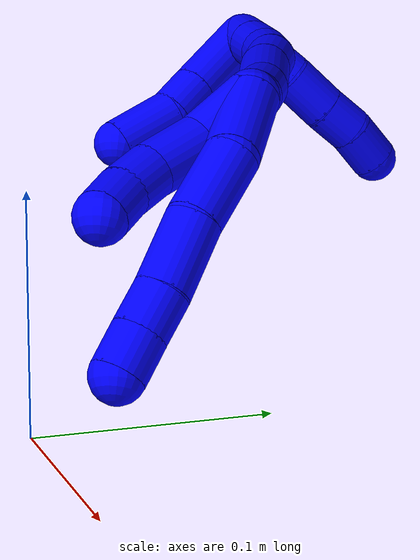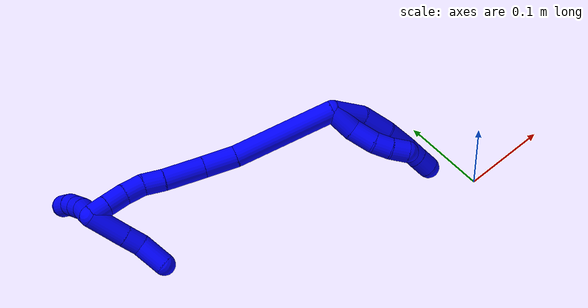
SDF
<sdf version="1.7">
 <world name="default">
  <model name="1">
   <static>0</static>
   <link name="1">
    <collision name="collision-cylinder-e_1_2_8">
     <pose>0.006859 -0.005844 -0.017224 2.81451 0.360626 1.6702</pose>
     <geometry><cylinder><radius>0.0125</radius><length>0.038877</length></cylinder></geometry>
     <surface>
      <friction><ode><mu>1.16</mu><mu2>1.16</mu2><slip1>0</slip1><slip2>0</slip2></ode></friction>
      <contact><ode><kp>1e+06</kp><kd>1</kd><max_vel>0</max_vel><min_depth>0.001</min_depth></ode></contact>
     </surface>
    </collision>
    <visual name="visual-cylinder-e_1_2_8">
     <pose>0.006859 -0.005844 -0.017224 2.81451 0.360626 1.6702</pose>
     <geometry><cylinder><radius>0.0125</radius><length>0.038877</length></cylinder></geometry>
     <material><ambient>0 0 1 1</ambient></material>
    </visual>
    <collision name="collision-cylinder-e_2_8_9">
     <pose>0.014441 -0.019079 -0.050878 2.71881 0.040101 0.18635</pose>
     <geometry><cylinder><radius>0.0125</radius><length>0.036063</length></cylinder></geometry>
     <surface>
      <friction><ode><mu>1.16</mu><mu2>1.16</mu2><slip1>0</slip1><slip2>0</slip2></ode></friction>
      <contact><ode><kp>1e+06</kp><kd>1</kd><max_vel>0</max_vel><min_depth>0.001</min_depth></ode></contact>
     </surface>
    </collision>
    <visual name="visual-cylinder-e_2_8_9">
     <pose>0.014441 -0.019079 -0.050878 2.71881 0.040101 0.18635</pose>
     <geometry><cylinder><radius>0.0125</radius><length>0.036063</length></cylinder></geometry>
     <material><ambient>0 0 1 1</ambient></material>
    </visual>
    <collision name="collision-cylinder-e_3_9_10">
     <pose>0.014152 -0.031517 -0.083776 2.8443 -0.058655 -0.386902</pose>
     <geometry><cylinder><radius>0.0125</radius><length>0.034507</length></cylinder></geometry>
     <surface>
      <friction><ode><mu>1.16</mu><mu2>1.16</mu2><slip1>0</slip1><slip2>0</slip2></ode></friction>
      <contact><ode><kp>1e+06</kp><kd>1</kd><max_vel>0</max_vel><min_depth>0.001</min_depth></ode></contact>
     </surface>
    </collision>
    <visual name="visual-cylinder-e_3_9_10">
     <pose>0.014152 -0.031517 -0.083776 2.8443 -0.058655 -0.386902</pose>
     <geometry><cylinder><radius>0.0125</radius><length>0.034507</length></cylinder></geometry>
     <material><ambient>0 0 1 1</ambient></material>
    </visual>
    <collision name="collision-cylinder-e_4_10_11">
     <pose>0.011957 -0.040193 -0.10978 2.77781 -0.115483 -0.609034</pose>
     <geometry><cylinder><radius>0.0125</radius><length>0.020542</length></cylinder></geometry>
     <surface>
      <friction><ode><mu>1.16</mu><mu2>1.16</mu2><slip1>0</slip1><slip2>0</slip2></ode></friction>
      <contact><ode><kp>1e+06</kp><kd>1</kd><max_vel>0</max_vel><min_depth>0.001</min_depth></ode></contact>
     </surface>
    </collision>
    <visual name="visual-cylinder-e_4_10_11">
     <pose>0.011957 -0.040193 -0.10978 2.77781 -0.115483 -0.609034</pose>
     <geometry><cylinder><radius>0.0125</radius><length>0.020542</length></cylinder></geometry>
     <material><ambient>0 0 1 1</ambient></material>
    </visual>
    <collision name="collision-cylinder-e_5_11_6">
     <pose>0.009792 -0.047221 -0.128674 2.79332 -0.098311 -0.545357</pose>
     <geometry><cylinder><radius>0.0125</radius><length>0.020012</length></cylinder></geometry>
     <surface>
      <friction><ode><mu>1.16</mu><mu2>1.16</mu2><slip1>0</slip1><slip2>0</slip2></ode></friction>
      <contact><ode><kp>1e+06</kp><kd>1</kd><max_vel>0</max_vel><min_depth>0.001</min_depth></ode></contact>
     </surface>
    </collision>
    <visual name="visual-cylinder-e_5_11_6">
     <pose>0.009792 -0.047221 -0.128674 2.79332 -0.098311 -0.545357</pose>
     <geometry><cylinder><radius>0.0125</radius><length>0.020012</length></cylinder></geometry>
     <material><ambient>0 0 1 1</ambient></material>
    </visual>
    <collision name="collision-cylinder-e_1_2_12">
     <pose>-0.002365 -0.009845 -0.011833 2.44762 -0.152476 -0.416347</pose>
     <geometry><cylinder><radius>0.0125</radius><length>0.031147</length></cylinder></geometry>
     <surface>
      <friction><ode><mu>1.16</mu><mu2>1.16</mu2><slip1>0</slip1><slip2>0</slip2></ode></friction>
      <contact><ode><kp>1e+06</kp><kd>1</kd><max_vel>0</max_vel><min_depth>0.001</min_depth></ode></contact>
     </surface>
    </collision>
    <visual name="visual-cylinder-e_1_2_12">
     <pose>-0.002365 -0.009845 -0.011833 2.44762 -0.152476 -0.416347</pose>
     <geometry><cylinder><radius>0.0125</radius><length>0.031147</length></cylinder></geometry>
     <material><ambient>0 0 1 1</ambient></material>
    </visual>
    <collision name="collision-cylinder-e_2_12_13">
     <pose>-0.004035 -0.0304 -0.033031 2.28935 0.048846 0.107524</pose>
     <geometry><cylinder><radius>0.0125</radius><length>0.028489</length></cylinder></geometry>
     <surface>
      <friction><ode><mu>1.16</mu><mu2>1.16</mu2><slip1>0</slip1><slip2>0</slip2></ode></friction>
      <contact><ode><kp>1e+06</kp><kd>1</kd><max_vel>0</max_vel><min_depth>0.001</min_depth></ode></contact>
     </surface>
    </collision>
    <visual name="visual-cylinder-e_2_12_13">
     <pose>-0.004035 -0.0304 -0.033031 2.28935 0.048846 0.107524</pose>
     <geometry><cylinder><radius>0.0125</radius><length>0.028489</length></cylinder></geometry>
     <material><ambient>0 0 1 1</ambient></material>
    </visual>
    <collision name="collision-cylinder-e_3_13_14">
     <pose>-0.000859 -0.047622 -0.049666 2.41109 0.248924 0.632371</pose>
     <geometry><cylinder><radius>0.0125</radius><length>0.020139</length></cylinder></geometry>
     <surface>
      <friction><ode><mu>1.16</mu><mu2>1.16</mu2><slip1>0</slip1><slip2>0</slip2></ode></friction>
      <contact><ode><kp>1e+06</kp><kd>1</kd><max_vel>0</max_vel><min_depth>0.001</min_depth></ode></contact>
     </surface>
    </collision>
    <visual name="visual-cylinder-e_3_13_14">
     <pose>-0.000859 -0.047622 -0.049666 2.41109 0.248924 0.632371</pose>
     <geometry><cylinder><radius>0.0125</radius><length>0.020139</length></cylinder></geometry>
     <material><ambient>0 0 1 1</ambient></material>
    </visual>
    <collision name="collision-cylinder-e_4_14_5">
     <pose>0.005477 -0.059534 -0.064566 2.5257 0.391119 1.11404</pose>
     <geometry><cylinder><radius>0.0125</radius><length>0.020225</length></cylinder></geometry>
     <surface>
      <friction><ode><mu>1.16</mu><mu2>1.16</mu2><slip1>0</slip1><slip2>0</slip2></ode></friction>
      <contact><ode><kp>1e+06</kp><kd>1</kd><max_vel>0</max_vel><min_depth>0.001</min_depth></ode></contact>
     </surface>
    </collision>
    <visual name="visual-cylinder-e_4_14_5">
     <pose>0.005477 -0.059534 -0.064566 2.5257 0.391119 1.11404</pose>
     <geometry><cylinder><radius>0.0125</radius><length>0.020225</length></cylinder></geometry>
     <material><ambient>0 0 1 1</ambient></material>
    </visual>
    <collision name="collision-cylinder-e_1_2_15">
     <pose>-0.051343 0.020906 0.023048 -0.736695 -1.02594 0.428135</pose>
     <geometry><cylinder><radius>0.0125</radius><length>0.120073</length></cylinder></geometry>
     <surface>
      <friction><ode><mu>1.16</mu><mu2>1.16</mu2><slip1>0</slip1><slip2>0</slip2></ode></friction>
      <contact><ode><kp>1e+06</kp><kd>1</kd><max_vel>0</max_vel><min_depth>0.001</min_depth></ode></contact>
     </surface>
    </collision>
    <visual name="visual-cylinder-e_1_2_15">
     <pose>-0.051343 0.020906 0.023048 -0.736695 -1.02594 0.428135</pose>
     <geometry><cylinder><radius>0.0125</radius><length>0.120073</length></cylinder></geometry>
     <material><ambient>0 0 1 1</ambient></material>
    </visual>
    <collision name="collision-cylinder-e_2_15_16">
     <pose>-0.117729 0.049066 0.055466 -0.65888 -0.903552 0.328817</pose>
     <geometry><cylinder><radius>0.0125</radius><length>0.038298</length></cylinder></geometry>
     <surface>
      <friction><ode><mu>1.16</mu><mu2>1.16</mu2><slip1>0</slip1><slip2>0</slip2></ode></friction>
      <contact><ode><kp>1e+06</kp><kd>1</kd><max_vel>0</max_vel><min_depth>0.001</min_depth></ode></contact>
     </surface>
    </collision>
    <visual name="visual-cylinder-e_2_15_16">
     <pose>-0.117729 0.049066 0.055466 -0.65888 -0.903552 0.328817</pose>
     <geometry><cylinder><radius>0.0125</radius><length>0.038298</length></cylinder></geometry>
     <material><ambient>0 0 1 1</ambient></material>
    </visual>
    <collision name="collision-cylinder-e_3_16_17">
     <pose>-0.150919 0.063651 0.078303 -0.498429 -0.869257 0.23521</pose>
     <geometry><cylinder><radius>0.0125</radius><length>0.047517</length></cylinder></geometry>
     <surface>
      <friction><ode><mu>1.16</mu><mu2>1.16</mu2><slip1>0</slip1><slip2>0</slip2></ode></friction>
      <contact><ode><kp>1e+06</kp><kd>1</kd><max_vel>0</max_vel><min_depth>0.001</min_depth></ode></contact>
     </surface>
    </collision>
    <visual name="visual-cylinder-e_3_16_17">
     <pose>-0.150919 0.063651 0.078303 -0.498429 -0.869257 0.23521</pose>
     <geometry><cylinder><radius>0.0125</radius><length>0.047517</length></cylinder></geometry>
     <material><ambient>0 0 1 1</ambient></material>
    </visual>
    <collision name="collision-cylinder-e_4_17_18">
     <pose>-0.17777 0.075695 0.098809 -0.590072 -0.798954 0.255209</pose>
     <geometry><cylinder><radius>0.0125</radius><length>0.02429</length></cylinder></geometry>
     <surface>
      <friction><ode><mu>1.16</mu><mu2>1.16</mu2><slip1>0</slip1><slip2>0</slip2></ode></friction>
      <contact><ode><kp>1e+06</kp><kd>1</kd><max_vel>0</max_vel><min_depth>0.001</min_depth></ode></contact>
     </surface>
    </collision>
    <visual name="visual-cylinder-e_4_17_18">
     <pose>-0.17777 0.075695 0.098809 -0.590072 -0.798954 0.255209</pose>
     <geometry><cylinder><radius>0.0125</radius><length>0.02429</length></cylinder></geometry>
     <material><ambient>0 0 1 1</ambient></material>
    </visual>
    <collision name="collision-cylinder-e_5_18_19">
     <pose>-0.19646 0.082627 0.111757 -0.359269 -1.00708 0.199418</pose>
     <geometry><cylinder><radius>0.0125</radius><length>0.023629</length></cylinder></geometry>
     <surface>
      <friction><ode><mu>1.16</mu><mu2>1.16</mu2><slip1>0</slip1><slip2>0</slip2></ode></friction>
      <contact><ode><kp>1e+06</kp><kd>1</kd><max_vel>0</max_vel><min_depth>0.001</min_depth></ode></contact>
     </surface>
    </collision>
    <visual name="visual-cylinder-e_5_18_19">
     <pose>-0.19646 0.082627 0.111757 -0.359269 -1.00708 0.199418</pose>
     <geometry><cylinder><radius>0.0125</radius><length>0.023629</length></cylinder></geometry>
     <material><ambient>0 0 1 1</ambient></material>
    </visual>
    <collision name="collision-cylinder-e_6_19_20">
     <pose>-0.217166 0.085413 0.123987 -0.089325 -1.03635 0.050951</pose>
     <geometry><cylinder><radius>0.0125</radius><length>0.024913</length></cylinder></geometry>
     <surface>
      <friction><ode><mu>1.16</mu><mu2>1.16</mu2><slip1>0</slip1><slip2>0</slip2></ode></friction>
      <contact><ode><kp>1e+06</kp><kd>1</kd><max_vel>0</max_vel><min_depth>0.001</min_depth></ode></contact>
     </surface>
    </collision>
    <visual name="visual-cylinder-e_6_19_20">
     <pose>-0.217166 0.085413 0.123987 -0.089325 -1.03635 0.050951</pose>
     <geometry><cylinder><radius>0.0125</radius><length>0.024913</length></cylinder></geometry>
     <material><ambient>0 0 1 1</ambient></material>
    </visual>
    <collision name="collision-cylinder-e_7_20_1">
     <pose>-0.237019 0.086365 0.135751 -0.070692 -1.03212 0.040118</pose>
     <geometry><cylinder><radius>0.0125</radius><length>0.02128</length></cylinder></geometry>
     <surface>
      <friction><ode><mu>1.16</mu><mu2>1.16</mu2><slip1>0</slip1><slip2>0</slip2></ode></friction>
      <contact><ode><kp>1e+06</kp><kd>1</kd><max_vel>0</max_vel><min_depth>0.001</min_depth></ode></contact>
     </surface>
    </collision>
    <visual name="visual-cylinder-e_7_20_1">
     <pose>-0.237019 0.086365 0.135751 -0.070692 -1.03212 0.040118</pose>
     <geometry><cylinder><radius>0.0125</radius><length>0.02128</length></cylinder></geometry>
     <material><ambient>0 0 1 1</ambient></material>
    </visual>
    <collision name="collision-cylinder-e_1_1_21">
     <pose>-0.245091 0.074022 0.122911 2.53348 0.047564 0.151321</pose>
     <geometry><cylinder><radius>0.0125</radius><length>0.044608</length></cylinder></geometry>
     <surface>
      <friction><ode><mu>1.16</mu><mu2>1.16</mu2><slip1>0</slip1><slip2>0</slip2></ode></friction>
      <contact><ode><kp>1e+06</kp><kd>1</kd><max_vel>0</max_vel><min_depth>0.001</min_depth></ode></contact>
     </surface>
    </collision>
    <visual name="visual-cylinder-e_1_1_21">
     <pose>-0.245091 0.074022 0.122911 2.53348 0.047564 0.151321</pose>
     <geometry><cylinder><radius>0.0125</radius><length>0.044608</length></cylinder></geometry>
     <material><ambient>0 0 1 1</ambient></material>
    </visual>
    <collision name="collision-cylinder-e_2_21_22">
     <pose>-0.243363 0.055272 0.095852 2.5401 0.06264 0.201347</pose>
     <geometry><cylinder><radius>0.0125</radius><length>0.021325</length></cylinder></geometry>
     <surface>
      <friction><ode><mu>1.16</mu><mu2>1.16</mu2><slip1>0</slip1><slip2>0</slip2></ode></friction>
      <contact><ode><kp>1e+06</kp><kd>1</kd><max_vel>0</max_vel><min_depth>0.001</min_depth></ode></contact>
     </surface>
    </collision>
    <visual name="visual-cylinder-e_2_21_22">
     <pose>-0.243363 0.055272 0.095852 2.5401 0.06264 0.201347</pose>
     <geometry><cylinder><radius>0.0125</radius><length>0.021325</length></cylinder></geometry>
     <material><ambient>0 0 1 1</ambient></material>
    </visual>
    <collision name="collision-cylinder-e_3_22_4">
     <pose>-0.244433 0.036269 0.076187 2.26884 -0.102178 -0.218413</pose>
     <geometry><cylinder><radius>0.0125</radius><length>0.034067</length></cylinder></geometry>
     <surface>
      <friction><ode><mu>1.16</mu><mu2>1.16</mu2><slip1>0</slip1><slip2>0</slip2></ode></friction>
      <contact><ode><kp>1e+06</kp><kd>1</kd><max_vel>0</max_vel><min_depth>0.001</min_depth></ode></contact>
     </surface>
    </collision>
    <visual name="visual-cylinder-e_3_22_4">
     <pose>-0.244433 0.036269 0.076187 2.26884 -0.102178 -0.218413</pose>
     <geometry><cylinder><radius>0.0125</radius><length>0.034067</length></cylinder></geometry>
     <material><ambient>0 0 1 1</ambient></material>
    </visual>
    <collision name="collision-cylinder-e_1_1_23">
     <pose>-0.246144 0.10148 0.133186 -2.06886 0.000452 -0.000761</pose>
     <geometry><cylinder><radius>0.0125</radius><length>0.033533</length></cylinder></geometry>
     <surface>
      <friction><ode><mu>1.16</mu><mu2>1.16</mu2><slip1>0</slip1><slip2>0</slip2></ode></friction>
      <contact><ode><kp>1e+06</kp><kd>1</kd><max_vel>0</max_vel><min_depth>0.001</min_depth></ode></contact>
     </surface>
    </collision>
    <visual name="visual-cylinder-e_1_1_23">
     <pose>-0.246144 0.10148 0.133186 -2.06886 0.000452 -0.000761</pose>
     <geometry><cylinder><radius>0.0125</radius><length>0.033533</length></cylinder></geometry>
     <material><ambient>0 0 1 1</ambient></material>
    </visual>
    <collision name="collision-cylinder-e_2_23_24">
     <pose>-0.247955 0.12711 0.119441 -2.05509 -0.14655 0.241938</pose>
     <geometry><cylinder><radius>0.0125</radius><length>0.024902</length></cylinder></geometry>
     <surface>
      <friction><ode><mu>1.16</mu><mu2>1.16</mu2><slip1>0</slip1><slip2>0</slip2></ode></friction>
      <contact><ode><kp>1e+06</kp><kd>1</kd><max_vel>0</max_vel><min_depth>0.001</min_depth></ode></contact>
     </surface>
    </collision>
    <visual name="visual-cylinder-e_2_23_24">
     <pose>-0.247955 0.12711 0.119441 -2.05509 -0.14655 0.241938</pose>
     <geometry><cylinder><radius>0.0125</radius><length>0.024902</length></cylinder></geometry>
     <material><ambient>0 0 1 1</ambient></material>
    </visual>
    <collision name="collision-cylinder-e_3_24_25">
     <pose>-0.251393 0.147098 0.109819 -1.975 -0.162505 0.245563</pose>
     <geometry><cylinder><radius>0.0125</radius><length>0.02003</length></cylinder></geometry>
     <surface>
      <friction><ode><mu>1.16</mu><mu2>1.16</mu2><slip1>0</slip1><slip2>0</slip2></ode></friction>
      <contact><ode><kp>1e+06</kp><kd>1</kd><max_vel>0</max_vel><min_depth>0.001</min_depth></ode></contact>
     </surface>
    </collision>
    <visual name="visual-cylinder-e_3_24_25">
     <pose>-0.251393 0.147098 0.109819 -1.975 -0.162505 0.245563</pose>
     <geometry><cylinder><radius>0.0125</radius><length>0.02003</length></cylinder></geometry>
     <material><ambient>0 0 1 1</ambient></material>
    </visual>
    <collision name="collision-cylinder-e_4_25_3">
     <pose>-0.256838 0.165055 0.101176 -2.06293 -0.363094 0.595192</pose>
     <geometry><cylinder><radius>0.0125</radius><length>0.021535</length></cylinder></geometry>
     <surface>
      <friction><ode><mu>1.16</mu><mu2>1.16</mu2><slip1>0</slip1><slip2>0</slip2></ode></friction>
      <contact><ode><kp>1e+06</kp><kd>1</kd><max_vel>0</max_vel><min_depth>0.001</min_depth></ode></contact>
     </surface>
    </collision>
    <visual name="visual-cylinder-e_4_25_3">
     <pose>-0.256838 0.165055 0.101176 -2.06293 -0.363094 0.595192</pose>
     <geometry><cylinder><radius>0.0125</radius><length>0.021535</length></cylinder></geometry>
     <material><ambient>0 0 1 1</ambient></material>
    </visual>
    <collision name="collision-sphere-3">
     <pose>-0.260662 0.173926 0.09642 0 -0 0</pose>
     <geometry><sphere><radius>0.0125</radius></sphere></geometry>
     <surface>
      <friction><ode><mu>1.16</mu><mu2>1.16</mu2><slip1>0</slip1><slip2>0</slip2></ode></friction>
      <contact><ode><kp>1e+06</kp><kd>1</kd><max_vel>0</max_vel><min_depth>0.001</min_depth></ode></contact>
     </surface>
    </collision>
    <visual name="visual-sphere-3">
     <pose>-0.260662 0.173926 0.09642 0 -0 0</pose>
     <geometry><sphere><radius>0.0125</radius></sphere></geometry>
     <material><ambient>0 0 1 1</ambient></material>
    </visual>
    <collision name="collision-sphere-25">
     <pose>-0.253014 0.156184 0.105932 0 -0 0</pose>
     <geometry><sphere><radius>0.0125</radius></sphere></geometry>
     <surface>
      <friction><ode><mu>1.16</mu><mu2>1.16</mu2><slip1>0</slip1><slip2>0</slip2></ode></friction>
      <contact><ode><kp>1e+06</kp><kd>1</kd><max_vel>0</max_vel><min_depth>0.001</min_depth></ode></contact>
     </surface>
    </collision>
    <visual name="visual-sphere-25">
     <pose>-0.253014 0.156184 0.105932 0 -0 0</pose>
     <geometry><sphere><radius>0.0125</radius></sphere></geometry>
     <material><ambient>0 0 1 1</ambient></material>
    </visual>
    <collision name="collision-sphere-24">
     <pose>-0.249773 0.138011 0.113706 0 -0 0</pose>
     <geometry><sphere><radius>0.0125</radius></sphere></geometry>
     <surface>
      <friction><ode><mu>1.16</mu><mu2>1.16</mu2><slip1>0</slip1><slip2>0</slip2></ode></friction>
      <contact><ode><kp>1e+06</kp><kd>1</kd><max_vel>0</max_vel><min_depth>0.001</min_depth></ode></contact>
     </surface>
    </collision>
    <visual name="visual-sphere-24">
     <pose>-0.249773 0.138011 0.113706 0 -0 0</pose>
     <geometry><sphere><radius>0.0125</radius></sphere></geometry>
     <material><ambient>0 0 1 1</ambient></material>
    </visual>
    <collision name="collision-sphere-23">
     <pose>-0.246137 0.116209 0.125176 0 -0 0</pose>
     <geometry><sphere><radius>0.0125</radius></sphere></geometry>
     <surface>
      <friction><ode><mu>1.16</mu><mu2>1.16</mu2><slip1>0</slip1><slip2>0</slip2></ode></friction>
      <contact><ode><kp>1e+06</kp><kd>1</kd><max_vel>0</max_vel><min_depth>0.001</min_depth></ode></contact>
     </surface>
    </collision>
    <visual name="visual-sphere-23">
     <pose>-0.246137 0.116209 0.125176 0 -0 0</pose>
     <geometry><sphere><radius>0.0125</radius></sphere></geometry>
     <material><ambient>0 0 1 1</ambient></material>
    </visual>
    <collision name="collision-sphere-4">
     <pose>-0.246171 0.023287 0.065297 0 -0 0</pose>
     <geometry><sphere><radius>0.0125</radius></sphere></geometry>
     <surface>
      <friction><ode><mu>1.16</mu><mu2>1.16</mu2><slip1>0</slip1><slip2>0</slip2></ode></friction>
      <contact><ode><kp>1e+06</kp><kd>1</kd><max_vel>0</max_vel><min_depth>0.001</min_depth></ode></contact>
     </surface>
    </collision>
    <visual name="visual-sphere-4">
     <pose>-0.246171 0.023287 0.065297 0 -0 0</pose>
     <geometry><sphere><radius>0.0125</radius></sphere></geometry>
     <material><ambient>0 0 1 1</ambient></material>
    </visual>
    <collision name="collision-sphere-22">
     <pose>-0.242696 0.04925 0.087078 0 -0 0</pose>
     <geometry><sphere><radius>0.0125</radius></sphere></geometry>
     <surface>
      <friction><ode><mu>1.16</mu><mu2>1.16</mu2><slip1>0</slip1><slip2>0</slip2></ode></friction>
      <contact><ode><kp>1e+06</kp><kd>1</kd><max_vel>0</max_vel><min_depth>0.001</min_depth></ode></contact>
     </surface>
    </collision>
    <visual name="visual-sphere-22">
     <pose>-0.242696 0.04925 0.087078 0 -0 0</pose>
     <geometry><sphere><radius>0.0125</radius></sphere></geometry>
     <material><ambient>0 0 1 1</ambient></material>
    </visual>
    <collision name="collision-sphere-21">
     <pose>-0.244031 0.061294 0.104626 0 -0 0</pose>
     <geometry><sphere><radius>0.0125</radius></sphere></geometry>
     <surface>
      <friction><ode><mu>1.16</mu><mu2>1.16</mu2><slip1>0</slip1><slip2>0</slip2></ode></friction>
      <contact><ode><kp>1e+06</kp><kd>1</kd><max_vel>0</max_vel><min_depth>0.001</min_depth></ode></contact>
     </surface>
    </collision>
    <visual name="visual-sphere-21">
     <pose>-0.244031 0.061294 0.104626 0 -0 0</pose>
     <geometry><sphere><radius>0.0125</radius></sphere></geometry>
     <material><ambient>0 0 1 1</ambient></material>
    </visual>
    <collision name="collision-sphere-1">
     <pose>-0.246152 0.08675 0.141195 0 -0 0</pose>
     <geometry><sphere><radius>0.0125</radius></sphere></geometry>
     <surface>
      <friction><ode><mu>1.16</mu><mu2>1.16</mu2><slip1>0</slip1><slip2>0</slip2></ode></friction>
      <contact><ode><kp>1e+06</kp><kd>1</kd><max_vel>0</max_vel><min_depth>0.001</min_depth></ode></contact>
     </surface>
    </collision>
    <visual name="visual-sphere-1">
     <pose>-0.246152 0.08675 0.141195 0 -0 0</pose>
     <geometry><sphere><radius>0.0125</radius></sphere></geometry>
     <material><ambient>0 0 1 1</ambient></material>
    </visual>
    <collision name="collision-sphere-6">
     <pose>0.00881 -0.050619 -0.138034 0 -0 0</pose>
     <geometry><sphere><radius>0.0125</radius></sphere></geometry>
     <surface>
      <friction><ode><mu>1.16</mu><mu2>1.16</mu2><slip1>0</slip1><slip2>0</slip2></ode></friction>
      <contact><ode><kp>1e+06</kp><kd>1</kd><max_vel>0</max_vel><min_depth>0.001</min_depth></ode></contact>
     </surface>
    </collision>
    <visual name="visual-sphere-6">
     <pose>0.00881 -0.050619 -0.138034 0 -0 0</pose>
     <geometry><sphere><radius>0.0125</radius></sphere></geometry>
     <material><ambient>0 0 1 1</ambient></material>
    </visual>
    <collision name="collision-sphere-11">
     <pose>0.010774 -0.043823 -0.119315 0 -0 0</pose>
     <geometry><sphere><radius>0.0125</radius></sphere></geometry>
     <surface>
      <friction><ode><mu>1.16</mu><mu2>1.16</mu2><slip1>0</slip1><slip2>0</slip2></ode></friction>
      <contact><ode><kp>1e+06</kp><kd>1</kd><max_vel>0</max_vel><min_depth>0.001</min_depth></ode></contact>
     </surface>
    </collision>
    <visual name="visual-sphere-11">
     <pose>0.010774 -0.043823 -0.119315 0 -0 0</pose>
     <geometry><sphere><radius>0.0125</radius></sphere></geometry>
     <material><ambient>0 0 1 1</ambient></material>
    </visual>
    <collision name="collision-sphere-10">
     <pose>0.013141 -0.036562 -0.100245 0 -0 0</pose>
     <geometry><sphere><radius>0.0125</radius></sphere></geometry>
     <surface>
      <friction><ode><mu>1.16</mu><mu2>1.16</mu2><slip1>0</slip1><slip2>0</slip2></ode></friction>
      <contact><ode><kp>1e+06</kp><kd>1</kd><max_vel>0</max_vel><min_depth>0.001</min_depth></ode></contact>
     </surface>
    </collision>
    <visual name="visual-sphere-10">
     <pose>0.013141 -0.036562 -0.100245 0 -0 0</pose>
     <geometry><sphere><radius>0.0125</radius></sphere></geometry>
     <material><ambient>0 0 1 1</ambient></material>
    </visual>
    <collision name="collision-sphere-9">
     <pose>0.015164 -0.026472 -0.067308 0 -0 0</pose>
     <geometry><sphere><radius>0.0125</radius></sphere></geometry>
     <surface>
      <friction><ode><mu>1.16</mu><mu2>1.16</mu2><slip1>0</slip1><slip2>0</slip2></ode></friction>
      <contact><ode><kp>1e+06</kp><kd>1</kd><max_vel>0</max_vel><min_depth>0.001</min_depth></ode></contact>
     </surface>
    </collision>
    <visual name="visual-sphere-9">
     <pose>0.015164 -0.026472 -0.067308 0 -0 0</pose>
     <geometry><sphere><radius>0.0125</radius></sphere></geometry>
     <material><ambient>0 0 1 1</ambient></material>
    </visual>
    <collision name="collision-sphere-2">
     <geometry><sphere><radius>0.0125</radius></sphere></geometry>
     <surface>
      <friction><ode><mu>1.16</mu><mu2>1.16</mu2><slip1>0</slip1><slip2>0</slip2></ode></friction>
      <contact><ode><kp>1e+06</kp><kd>1</kd><max_vel>0</max_vel><min_depth>0.001</min_depth></ode></contact>
     </surface>
    </collision>
    <visual name="visual-sphere-2">
     <geometry><sphere><radius>0.0125</radius></sphere></geometry>
     <material><ambient>0 0 1 1</ambient></material>
    </visual>
    <collision name="collision-sphere-19">
     <pose>-0.206447 0.084847 0.117667 0 -0 0</pose>
     <geometry><sphere><radius>0.0125</radius></sphere></geometry>
     <surface>
      <friction><ode><mu>1.16</mu><mu2>1.16</mu2><slip1>0</slip1><slip2>0</slip2></ode></friction>
      <contact><ode><kp>1e+06</kp><kd>1</kd><max_vel>0</max_vel><min_depth>0.001</min_depth></ode></contact>
     </surface>
    </collision>
    <visual name="visual-sphere-19">
     <pose>-0.206447 0.084847 0.117667 0 -0 0</pose>
     <geometry><sphere><radius>0.0125</radius></sphere></geometry>
     <material><ambient>0 0 1 1</ambient></material>
    </visual>
    <collision name="collision-sphere-8">
     <pose>0.013718 -0.011687 -0.034447 0 -0 0</pose>
     <geometry><sphere><radius>0.0125</radius></sphere></geometry>
     <surface>
      <friction><ode><mu>1.16</mu><mu2>1.16</mu2><slip1>0</slip1><slip2>0</slip2></ode></friction>
      <contact><ode><kp>1e+06</kp><kd>1</kd><max_vel>0</max_vel><min_depth>0.001</min_depth></ode></contact>
     </surface>
    </collision>
    <visual name="visual-sphere-8">
     <pose>0.013718 -0.011687 -0.034447 0 -0 0</pose>
     <geometry><sphere><radius>0.0125</radius></sphere></geometry>
     <material><ambient>0 0 1 1</ambient></material>
    </visual>
    <collision name="collision-sphere-12">
     <pose>-0.004731 -0.01969 -0.023665 0 -0 0</pose>
     <geometry><sphere><radius>0.0125</radius></sphere></geometry>
     <surface>
      <friction><ode><mu>1.16</mu><mu2>1.16</mu2><slip1>0</slip1><slip2>0</slip2></ode></friction>
      <contact><ode><kp>1e+06</kp><kd>1</kd><max_vel>0</max_vel><min_depth>0.001</min_depth></ode></contact>
     </surface>
    </collision>
    <visual name="visual-sphere-12">
     <pose>-0.004731 -0.01969 -0.023665 0 -0 0</pose>
     <geometry><sphere><radius>0.0125</radius></sphere></geometry>
     <material><ambient>0 0 1 1</ambient></material>
    </visual>
    <collision name="collision-sphere-13">
     <pose>-0.00334 -0.04111 -0.042397 0 -0 0</pose>
     <geometry><sphere><radius>0.0125</radius></sphere></geometry>
     <surface>
      <friction><ode><mu>1.16</mu><mu2>1.16</mu2><slip1>0</slip1><slip2>0</slip2></ode></friction>
      <contact><ode><kp>1e+06</kp><kd>1</kd><max_vel>0</max_vel><min_depth>0.001</min_depth></ode></contact>
     </surface>
    </collision>
    <visual name="visual-sphere-13">
     <pose>-0.00334 -0.04111 -0.042397 0 -0 0</pose>
     <geometry><sphere><radius>0.0125</radius></sphere></geometry>
     <material><ambient>0 0 1 1</ambient></material>
    </visual>
    <collision name="collision-sphere-14">
     <pose>0.001622 -0.054134 -0.056935 0 -0 0</pose>
     <geometry><sphere><radius>0.0125</radius></sphere></geometry>
     <surface>
      <friction><ode><mu>1.16</mu><mu2>1.16</mu2><slip1>0</slip1><slip2>0</slip2></ode></friction>
      <contact><ode><kp>1e+06</kp><kd>1</kd><max_vel>0</max_vel><min_depth>0.001</min_depth></ode></contact>
     </surface>
    </collision>
    <visual name="visual-sphere-14">
     <pose>0.001622 -0.054134 -0.056935 0 -0 0</pose>
     <geometry><sphere><radius>0.0125</radius></sphere></geometry>
     <material><ambient>0 0 1 1</ambient></material>
    </visual>
    <collision name="collision-sphere-5">
     <pose>0.009332 -0.064935 -0.072197 0 -0 0</pose>
     <geometry><sphere><radius>0.0125</radius></sphere></geometry>
     <surface>
      <friction><ode><mu>1.16</mu><mu2>1.16</mu2><slip1>0</slip1><slip2>0</slip2></ode></friction>
      <contact><ode><kp>1e+06</kp><kd>1</kd><max_vel>0</max_vel><min_depth>0.001</min_depth></ode></contact>
     </surface>
    </collision>
    <visual name="visual-sphere-5">
     <pose>0.009332 -0.064935 -0.072197 0 -0 0</pose>
     <geometry><sphere><radius>0.0125</radius></sphere></geometry>
     <material><ambient>0 0 1 1</ambient></material>
    </visual>
    <collision name="collision-sphere-15">
     <pose>-0.102687 0.041811 0.046096 0 -0 0</pose>
     <geometry><sphere><radius>0.0125</radius></sphere></geometry>
     <surface>
      <friction><ode><mu>1.16</mu><mu2>1.16</mu2><slip1>0</slip1><slip2>0</slip2></ode></friction>
      <contact><ode><kp>1e+06</kp><kd>1</kd><max_vel>0</max_vel><min_depth>0.001</min_depth></ode></contact>
     </surface>
    </collision>
    <visual name="visual-sphere-15">
     <pose>-0.102687 0.041811 0.046096 0 -0 0</pose>
     <geometry><sphere><radius>0.0125</radius></sphere></geometry>
     <material><ambient>0 0 1 1</ambient></material>
    </visual>
    <collision name="collision-sphere-16">
     <pose>-0.132771 0.056321 0.064835 0 -0 0</pose>
     <geometry><sphere><radius>0.0125</radius></sphere></geometry>
     <surface>
      <friction><ode><mu>1.16</mu><mu2>1.16</mu2><slip1>0</slip1><slip2>0</slip2></ode></friction>
      <contact><ode><kp>1e+06</kp><kd>1</kd><max_vel>0</max_vel><min_depth>0.001</min_depth></ode></contact>
     </surface>
    </collision>
    <visual name="visual-sphere-16">
     <pose>-0.132771 0.056321 0.064835 0 -0 0</pose>
     <geometry><sphere><radius>0.0125</radius></sphere></geometry>
     <material><ambient>0 0 1 1</ambient></material>
    </visual>
    <collision name="collision-sphere-17">
     <pose>-0.169067 0.070982 0.091771 0 -0 0</pose>
     <geometry><sphere><radius>0.0125</radius></sphere></geometry>
     <surface>
      <friction><ode><mu>1.16</mu><mu2>1.16</mu2><slip1>0</slip1><slip2>0</slip2></ode></friction>
      <contact><ode><kp>1e+06</kp><kd>1</kd><max_vel>0</max_vel><min_depth>0.001</min_depth></ode></contact>
     </surface>
    </collision>
    <visual name="visual-sphere-17">
     <pose>-0.169067 0.070982 0.091771 0 -0 0</pose>
     <geometry><sphere><radius>0.0125</radius></sphere></geometry>
     <material><ambient>0 0 1 1</ambient></material>
    </visual>
    <collision name="collision-sphere-18">
     <pose>-0.186474 0.080408 0.105848 0 -0 0</pose>
     <geometry><sphere><radius>0.0125</radius></sphere></geometry>
     <surface>
      <friction><ode><mu>1.16</mu><mu2>1.16</mu2><slip1>0</slip1><slip2>0</slip2></ode></friction>
      <contact><ode><kp>1e+06</kp><kd>1</kd><max_vel>0</max_vel><min_depth>0.001</min_depth></ode></contact>
     </surface>
    </collision>
    <visual name="visual-sphere-18">
     <pose>-0.186474 0.080408 0.105848 0 -0 0</pose>
     <geometry><sphere><radius>0.0125</radius></sphere></geometry>
     <material><ambient>0 0 1 1</ambient></material>
    </visual>
    <collision name="collision-sphere-20">
     <pose>-0.227886 0.085979 0.130306 0 -0 0</pose>
     <geometry><sphere><radius>0.0125</radius></sphere></geometry>
     <surface>
      <friction><ode><mu>1.16</mu><mu2>1.16</mu2><slip1>0</slip1><slip2>0</slip2></ode></friction>
      <contact><ode><kp>1e+06</kp><kd>1</kd><max_vel>0</max_vel><min_depth>0.001</min_depth></ode></contact>
     </surface>
    </collision>
    <visual name="visual-sphere-20">
     <pose>-0.227886 0.085979 0.130306 0 -0 0</pose>
     <geometry><sphere><radius>0.0125</radius></sphere></geometry>
     <material><ambient>0 0 1 1</ambient></material>
    </visual>
    <inertial>
     <pose>-0.113442 0.035795 0.036975 0 -0 0</pose>
     <mass>0.75</mass>
     <inertia>
      <ixx>0.000153</ixx>
      <ixy>0</ixy>
      <ixz>0</ixz>
      <iyy>0.000171</iyy>
      <iyz>0</iyz>
      <izz>8.6e-05</izz>
     </inertia>
    </inertial>
   </link>
   <pose>-0.106288 0.127472 0.10786 -0.327897 -0.509653 0.135085</pose>
  </model>
 </world>
</sdf>
